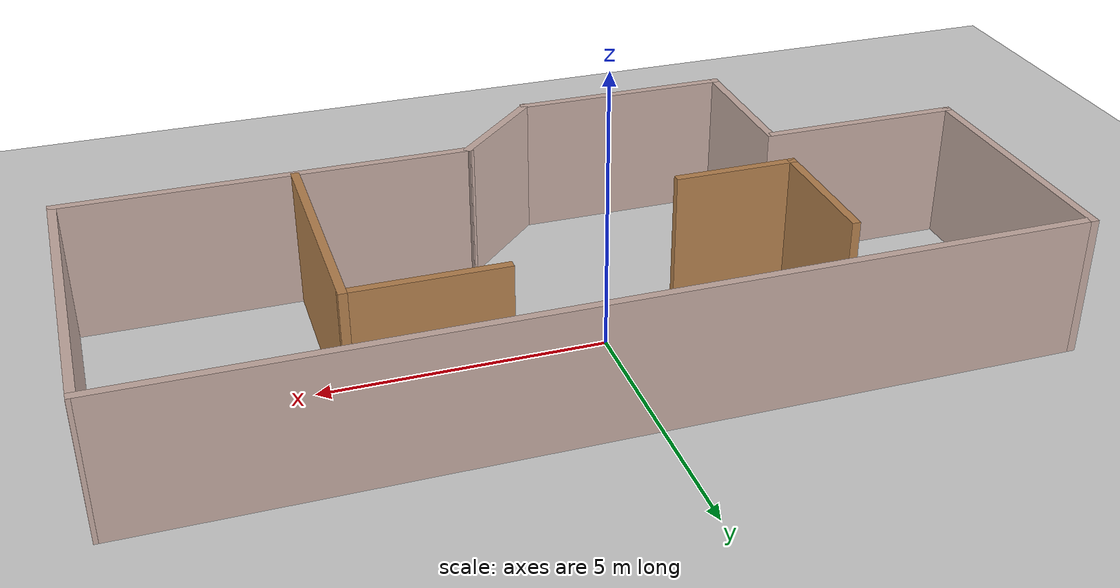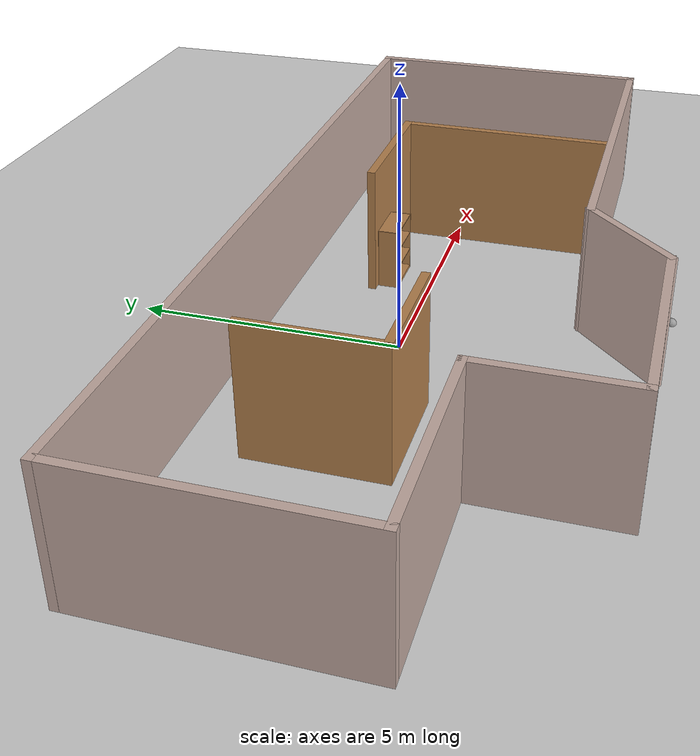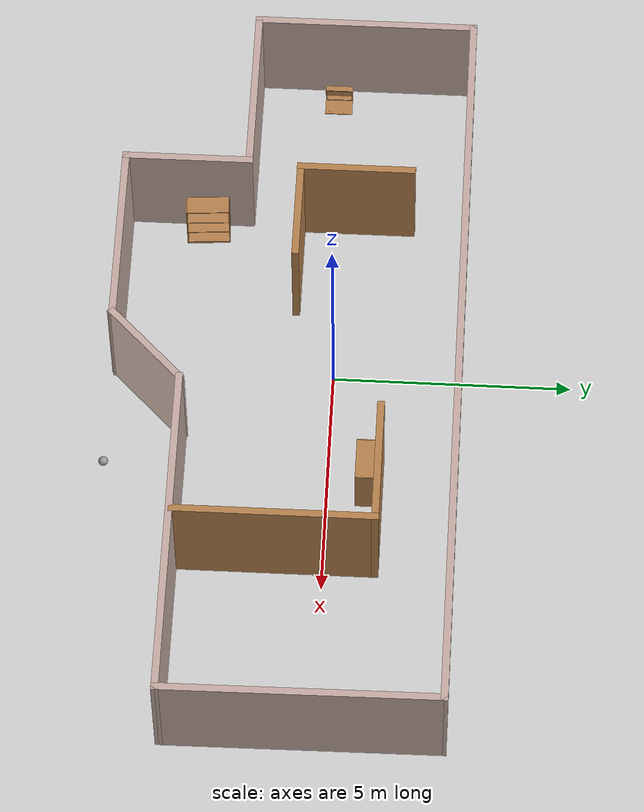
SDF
<sdf version="1.7">
 <world name="default">
  <light name="sun" type="directional">
   <pose>0 0 10 0 -0 0</pose>
   <diffuse>0.8 0.8 0.8 1</diffuse>
   <specular>0.2 0.2 0.2 1</specular>
   <attenuation>
    <range>1000</range>
    <constant>0.9</constant>
    <linear>0.01</linear>
    <quadratic>0.001</quadratic>
   </attenuation>
   <direction>-0.5 0.1 -0.9</direction>
   <spot><inner_angle>0</inner_angle><outer_angle>0</outer_angle><falloff>0</falloff></spot>
  </light>
  <model name="ground_plane">
   <static>1</static>
   <link name="link">
    <collision name="collision">
     <geometry><plane><normal>0 0 1</normal><size>100 100</size></plane></geometry>
     <surface>
      <contact><collide_bitmask>65535</collide_bitmask></contact>
      <friction><ode><mu>100</mu><mu2>50</mu2></ode></friction>
     </surface>
    </collision>
    <visual name="visual">
     <cast_shadows>0</cast_shadows>
     <geometry><plane><normal>0 0 1</normal><size>100 100</size></plane></geometry>
     <material>
      <script><uri>file://media/materials/scripts/gazebo.material</uri><name>Gazebo/Grey</name></script>
     </material>
    </visual>
   </link>
  </model>
  <gravity>0 0 -9.8</gravity>
  <magnetic_field>6e-06 2.3e-05 -4.2e-05</magnetic_field>
  <atmosphere type="adiabatic"/>
  <physics type="ode">
   <max_step_size>0.001</max_step_size>
   <real_time_factor>1</real_time_factor>
   <real_time_update_rate>1000</real_time_update_rate>
  </physics>
  <scene><ambient>0.4 0.4 0.4 1</ambient><background>0.7 0.7 0.7 1</background><shadows>1</shadows></scene>
  <spherical_coordinates>
   <surface_model>EARTH_WGS84</surface_model>
   <latitude_deg>0</latitude_deg>
   <longitude_deg>0</longitude_deg>
   <elevation>0</elevation>
   <heading_deg>0</heading_deg>
  </spherical_coordinates>
  <model name="house_for_my_robot">
   <pose>0.600575 -1.32557 0 0 -0 0</pose>
   <link name="Wall_0">
    <collision name="Wall_0_Collision">
     <geometry><box><size>16.15 0.15 2.5</size></box></geometry>
     <pose>0 0 1.25 0 -0 0</pose>
    </collision>
    <visual name="Wall_0_Visual">
     <pose>0 0 1.25 0 -0 0</pose>
     <geometry><box><size>16.15 0.15 2.5</size></box></geometry>
     <material>
      <script><uri>file://media/materials/scripts/gazebo.material</uri><name>Gazebo/Grey</name></script>
      <ambient>0.760784 0.662745 0.627451 1</ambient>
     </material>
     <meta><layer>0</layer></meta>
    </visual>
    <pose>-0.01769 3.96227 0 0 -0 0</pose>
   </link>
   <link name="Wall_10">
    <collision name="Wall_10_Collision">
     <geometry><box><size>2.5 0.15 2.5</size></box></geometry>
     <pose>0 0 1.25 0 -0 0</pose>
    </collision>
    <visual name="Wall_10_Visual">
     <pose>0 0 1.25 0 -0 0</pose>
     <geometry><box><size>2.5 0.15 2.5</size></box></geometry>
     <material>
      <script><uri>file://media/materials/scripts/gazebo.material</uri><name>Gazebo/Wood</name></script>
      <ambient>1 1 1 1</ambient>
     </material>
     <meta><layer>0</layer></meta>
    </visual>
    <pose>-4.32043 1.63013 0 0 -0 -1.5708</pose>
   </link>
   <link name="Wall_11">
    <collision name="Wall_11_Collision">
     <geometry><box><size>2.25 0.15 2.5</size></box></geometry>
     <pose>0 0 1.25 0 -0 0</pose>
    </collision>
    <visual name="Wall_11_Visual">
     <pose>0 0 1.25 0 -0 0</pose>
     <geometry><box><size>2.25 0.15 2.5</size></box></geometry>
     <material>
      <script><uri>file://media/materials/scripts/gazebo.material</uri><name>Gazebo/Wood</name></script>
      <ambient>1 1 1 1</ambient>
     </material>
     <meta><layer>0</layer></meta>
    </visual>
    <pose>-3.27043 0.455127 0 0 -0 0</pose>
   </link>
   <link name="Wall_13">
    <collision name="Wall_13_Collision">
     <geometry><box><size>4.25 0.15 2.5</size></box></geometry>
     <pose>0 0 1.25 0 -0 0</pose>
    </collision>
    <visual name="Wall_13_Visual">
     <pose>0 0 1.25 0 -0 0</pose>
     <geometry><box><size>4.25 0.15 2.5</size></box></geometry>
     <material>
      <script><uri>file://media/materials/scripts/gazebo.material</uri><name>Gazebo/Wood</name></script>
      <ambient>1 1 1 1</ambient>
     </material>
     <meta><layer>0</layer></meta>
    </visual>
    <pose>4.00011 0.358363 0 0 -0 1.5708</pose>
   </link>
   <link name="Wall_14">
    <collision name="Wall_14_Collision">
     <geometry><box><size>2.75 0.15 2.5</size></box></geometry>
     <pose>0 0 1.25 0 -0 0</pose>
    </collision>
    <visual name="Wall_14_Visual">
     <pose>0 0 1.25 0 -0 0</pose>
     <geometry><box><size>2.75 0.15 2.5</size></box></geometry>
     <material>
      <script><uri>file://media/materials/scripts/gazebo.material</uri><name>Gazebo/Wood</name></script>
      <ambient>1 1 1 1</ambient>
     </material>
     <meta><layer>0</layer></meta>
    </visual>
    <pose>2.70011 2.40836 0 0 -0 3.14159</pose>
   </link>
   <link name="Wall_2">
    <collision name="Wall_2_Collision">
     <geometry><box><size>4.75 0.15 2.5</size></box></geometry>
     <pose>0 0 1.25 0 -0 0</pose>
    </collision>
    <visual name="Wall_2_Visual">
     <pose>0 0 1.25 0 -0 0</pose>
     <geometry><box><size>4.75 0.15 2.5</size></box></geometry>
     <material>
      <script><uri>file://media/materials/scripts/gazebo.material</uri><name>Gazebo/Grey</name></script>
      <ambient>0.760784 0.662745 0.627451 1</ambient>
     </material>
     <meta><layer>0</layer></meta>
    </visual>
    <pose>-8.01769 1.66227 0 0 -0 -1.5708</pose>
   </link>
   <link name="Wall_3">
    <collision name="Wall_3_Collision">
     <geometry><box><size>3.75 0.15 2.5</size></box></geometry>
     <pose>0 0 1.25 0 -0 0</pose>
    </collision>
    <visual name="Wall_3_Visual">
     <pose>0 0 1.25 0 -0 0</pose>
     <geometry><box><size>3.75 0.15 2.5</size></box></geometry>
     <material>
      <script><uri>file://media/materials/scripts/gazebo.material</uri><name>Gazebo/Grey</name></script>
      <ambient>0.760784 0.662745 0.627451 1</ambient>
     </material>
     <meta><layer>0</layer></meta>
    </visual>
    <pose>-6.21769 -0.637728 0 0 -0 0</pose>
   </link>
   <link name="Wall_4">
    <collision name="Wall_4_Collision">
     <geometry><box><size>2.75 0.15 2.5</size></box></geometry>
     <pose>0 0 1.25 0 -0 0</pose>
    </collision>
    <visual name="Wall_4_Visual">
     <pose>0 0 1.25 0 -0 0</pose>
     <geometry><box><size>2.75 0.15 2.5</size></box></geometry>
     <material>
      <script><uri>file://media/materials/scripts/gazebo.material</uri><name>Gazebo/Grey</name></script>
      <ambient>0.760784 0.662745 0.627451 1</ambient>
     </material>
     <meta><layer>0</layer></meta>
    </visual>
    <pose>-4.41769 -1.93773 0 0 -0 -1.5708</pose>
   </link>
   <link name="Wall_5">
    <collision name="Wall_5_Collision">
     <geometry><box><size>4 0.15 2.5</size></box></geometry>
     <pose>0 0 1.25 0 -0 0</pose>
    </collision>
    <visual name="Wall_5_Visual">
     <pose>0 0 1.25 0 -0 0</pose>
     <geometry><box><size>4 0.15 2.5</size></box></geometry>
     <material>
      <script><uri>file://media/materials/scripts/gazebo.material</uri><name>Gazebo/Grey</name></script>
      <ambient>0.760784 0.662745 0.627451 1</ambient>
     </material>
     <meta><layer>0</layer></meta>
    </visual>
    <pose>-2.49269 -3.23773 0 0 -0 0</pose>
   </link>
   <link name="Wall_6">
    <collision name="Wall_6_Collision">
     <geometry><box><size>2.25 0.15 2.5</size></box></geometry>
     <pose>0 0 1.25 0 -0 0</pose>
    </collision>
    <visual name="Wall_6_Visual">
     <pose>0 0 1.25 0 -0 0</pose>
     <geometry><box><size>2.25 0.15 2.5</size></box></geometry>
     <material>
      <script><uri>file://media/materials/scripts/gazebo.material</uri><name>Gazebo/Grey</name></script>
      <ambient>0.760784 0.662745 0.627451 1</ambient>
     </material>
     <meta><layer>0</layer></meta>
    </visual>
    <pose>0.174772 -2.49527 0 0 -0 0.785398</pose>
   </link>
   <link name="Wall_7">
    <collision name="Wall_7_Collision">
     <geometry><box><size>7.25 0.15 2.5</size></box></geometry>
     <pose>0 0 1.25 0 -0 0</pose>
    </collision>
    <visual name="Wall_7_Visual">
     <pose>0 0 1.25 0 -0 0</pose>
     <geometry><box><size>7.25 0.15 2.5</size></box></geometry>
     <material>
      <script><uri>file://media/materials/scripts/gazebo.material</uri><name>Gazebo/Grey</name></script>
      <ambient>0.760784 0.662745 0.627451 1</ambient>
     </material>
     <meta><layer>0</layer></meta>
    </visual>
    <pose>4.46723 -1.7528 0 0 -0 0</pose>
   </link>
   <link name="Wall_8">
    <collision name="Wall_8_Collision">
     <geometry><box><size>5.86518 0.15 2.5</size></box></geometry>
     <pose>0 0 1.25 0 -0 0</pose>
    </collision>
    <visual name="Wall_8_Visual">
     <pose>0 0 1.25 0 -0 0</pose>
     <geometry><box><size>5.86518 0.15 2.5</size></box></geometry>
     <material>
      <script><uri>file://media/materials/scripts/gazebo.material</uri><name>Gazebo/Grey</name></script>
      <ambient>0.760784 0.662745 0.627451 1</ambient>
     </material>
     <meta><layer>0</layer></meta>
    </visual>
    <pose>7.99977 1.10473 0 0 -0 1.57691</pose>
   </link>
   <static>1</static>
  </model>
  <model name="my_ball">
   <link name="link_0">
    <inertial>
     <mass>1</mass>
     <inertia><ixx>0.1</ixx><ixy>0</ixy><ixz>0</ixz><iyy>0.1</iyy><iyz>0</iyz><izz>0.1</izz></inertia>
    </inertial>
    <visual name="visual">
     <geometry><sphere><radius>0.1</radius></sphere></geometry>
     <material>
      <lighting>1</lighting>
      <script><uri>file://media/materials/scripts/gazebo.material</uri><name>Gazebo/Grey</name></script>
      <shader type="pixel"><normal_map>__default__</normal_map></shader>
      <ambient>1 1 1 1</ambient>
      <diffuse>1 1 1 1</diffuse>
      <specular>1 1 1 1</specular>
      <emissive>1 1 1 1</emissive>
     </material>
    </visual>
    <collision name="collision">
     <geometry><sphere><radius>0.1</radius></sphere></geometry>
     <surface>
      <friction>
       <ode><mu>1</mu><mu2>1</mu2><fdir1>0 0 0</fdir1><slip1>0</slip1><slip2>0</slip2></ode>
       <torsional>
        <coefficient>1</coefficient>
        <patch_radius>0</patch_radius>
        <surface_radius>0</surface_radius>
        <use_patch_radius>1</use_patch_radius>
        <ode><slip>0</slip></ode>
       </torsional>
      </friction>
      <bounce><restitution_coefficient>0</restitution_coefficient><threshold>1e+06</threshold></bounce>
      <contact>
       <collide_without_contact>0</collide_without_contact>
       <collide_without_contact_bitmask>1</collide_without_contact_bitmask>
       <collide_bitmask>1</collide_bitmask>
       <ode>
        <soft_cfm>0</soft_cfm>
        <soft_erp>0.2</soft_erp>
        <kp>1e+13</kp>
        <kd>1</kd>
        <max_vel>0.01</max_vel>
        <min_depth>0</min_depth>
       </ode>
       <bullet>
        <split_impulse>1</split_impulse>
        <split_impulse_penetration_threshold>-0.01</split_impulse_penetration_threshold>
        <soft_cfm>0</soft_cfm>
        <soft_erp>0.2</soft_erp>
        <kp>1e+13</kp>
        <kd>1</kd>
       </bullet>
      </contact>
     </surface>
    </collision>
   </link>
   <static>0</static>
   <pose>2.20182 -4.70021 0 0 -0 0</pose>
  </model>
  <model name="bookshelf">
   <static>1</static>
   <link name="link">
    <inertial><mass>1</mass></inertial>
    <collision name="back">
     <pose>0 0.005 0.6 0 -0 0</pose>
     <geometry><box><size>0.9 0.01 1.2</size></box></geometry>
    </collision>
    <visual name="visual1">
     <pose>0 0.005 0.6 0 -0 0</pose>
     <geometry><box><size>0.9 0.01 1.2</size></box></geometry>
     <material>
      <script><uri>file://media/materials/scripts/gazebo.material</uri><name>Gazebo/Wood</name></script>
     </material>
    </visual>
    <collision name="left_side">
     <pose>0.45 -0.195 0.6 0 -0 0</pose>
     <geometry><box><size>0.02 0.4 1.2</size></box></geometry>
    </collision>
    <visual name="visual2">
     <pose>0.45 -0.195 0.6 0 -0 0</pose>
     <geometry><box><size>0.02 0.4 1.2</size></box></geometry>
     <material>
      <script><uri>file://media/materials/scripts/gazebo.material</uri><name>Gazebo/Wood</name></script>
     </material>
    </visual>
    <collision name="right_side">
     <pose>-0.45 -0.195 0.6 0 -0 0</pose>
     <geometry><box><size>0.02 0.4 1.2</size></box></geometry>
    </collision>
    <visual name="visual3">
     <pose>-0.45 -0.195 0.6 0 -0 0</pose>
     <geometry><box><size>0.02 0.4 1.2</size></box></geometry>
     <material>
      <script><uri>file://media/materials/scripts/gazebo.material</uri><name>Gazebo/Wood</name></script>
     </material>
    </visual>
    <collision name="bottom">
     <pose>0 -0.195 0.03 0 -0 0</pose>
     <geometry><box><size>0.88 0.4 0.06</size></box></geometry>
    </collision>
    <visual name="visual4">
     <pose>0 -0.195 0.03 0 -0 0</pose>
     <geometry><box><size>0.88 0.4 0.06</size></box></geometry>
     <material>
      <script><uri>file://media/materials/scripts/gazebo.material</uri><name>Gazebo/Wood</name></script>
     </material>
    </visual>
    <collision name="top">
     <pose>0 -0.195 1.19 0 -0 0</pose>
     <geometry><box><size>0.88 0.4 0.02</size></box></geometry>
    </collision>
    <visual name="visual5">
     <pose>0 -0.195 1.19 0 -0 0</pose>
     <geometry><box><size>0.88 0.4 0.02</size></box></geometry>
     <material>
      <script><uri>file://media/materials/scripts/gazebo.material</uri><name>Gazebo/Wood</name></script>
     </material>
    </visual>
    <collision name="low_shelf">
     <pose>0 -0.195 0.43 0 -0 0</pose>
     <geometry><box><size>0.88 0.4 0.02</size></box></geometry>
    </collision>
    <visual name="visual6">
     <pose>0 -0.195 0.43 0 -0 0</pose>
     <geometry><box><size>0.88 0.4 0.02</size></box></geometry>
     <material>
      <script><uri>file://media/materials/scripts/gazebo.material</uri><name>Gazebo/Wood</name></script>
     </material>
    </visual>
    <collision name="high_shelf">
     <pose>0 -0.195 0.8 0 -0 0</pose>
     <geometry><box><size>0.88 0.4 0.02</size></box></geometry>
    </collision>
    <visual name="visual7">
     <pose>0 -0.195 0.8 0 -0 0</pose>
     <geometry><box><size>0.88 0.4 0.02</size></box></geometry>
     <material>
      <script><uri>file://media/materials/scripts/gazebo.material</uri><name>Gazebo/Wood</name></script>
     </material>
    </visual>
   </link>
   <pose>2.55566 0.99068 0 0 -0 0</pose>
  </model>
  <model name="bookshelf_0">
   <static>1</static>
   <link name="link">
    <inertial><mass>1</mass></inertial>
    <collision name="back">
     <pose>0 0.005 0.6 0 -0 0</pose>
     <geometry><box><size>0.9 0.01 1.2</size></box></geometry>
    </collision>
    <visual name="visual1">
     <pose>0 0.005 0.6 0 -0 0</pose>
     <geometry><box><size>0.9 0.01 1.2</size></box></geometry>
     <material>
      <script><uri>file://media/materials/scripts/gazebo.material</uri><name>Gazebo/Wood</name></script>
     </material>
    </visual>
    <collision name="left_side">
     <pose>0.45 -0.195 0.6 0 -0 0</pose>
     <geometry><box><size>0.02 0.4 1.2</size></box></geometry>
    </collision>
    <visual name="visual2">
     <pose>0.45 -0.195 0.6 0 -0 0</pose>
     <geometry><box><size>0.02 0.4 1.2</size></box></geometry>
     <material>
      <script><uri>file://media/materials/scripts/gazebo.material</uri><name>Gazebo/Wood</name></script>
     </material>
    </visual>
    <collision name="right_side">
     <pose>-0.45 -0.195 0.6 0 -0 0</pose>
     <geometry><box><size>0.02 0.4 1.2</size></box></geometry>
    </collision>
    <visual name="visual3">
     <pose>-0.45 -0.195 0.6 0 -0 0</pose>
     <geometry><box><size>0.02 0.4 1.2</size></box></geometry>
     <material>
      <script><uri>file://media/materials/scripts/gazebo.material</uri><name>Gazebo/Wood</name></script>
     </material>
    </visual>
    <collision name="bottom">
     <pose>0 -0.195 0.03 0 -0 0</pose>
     <geometry><box><size>0.88 0.4 0.06</size></box></geometry>
    </collision>
    <visual name="visual4">
     <pose>0 -0.195 0.03 0 -0 0</pose>
     <geometry><box><size>0.88 0.4 0.06</size></box></geometry>
     <material>
      <script><uri>file://media/materials/scripts/gazebo.material</uri><name>Gazebo/Wood</name></script>
     </material>
    </visual>
    <collision name="top">
     <pose>0 -0.195 1.19 0 -0 0</pose>
     <geometry><box><size>0.88 0.4 0.02</size></box></geometry>
    </collision>
    <visual name="visual5">
     <pose>0 -0.195 1.19 0 -0 0</pose>
     <geometry><box><size>0.88 0.4 0.02</size></box></geometry>
     <material>
      <script><uri>file://media/materials/scripts/gazebo.material</uri><name>Gazebo/Wood</name></script>
     </material>
    </visual>
    <collision name="low_shelf">
     <pose>0 -0.195 0.43 0 -0 0</pose>
     <geometry><box><size>0.88 0.4 0.02</size></box></geometry>
    </collision>
    <visual name="visual6">
     <pose>0 -0.195 0.43 0 -0 0</pose>
     <geometry><box><size>0.88 0.4 0.02</size></box></geometry>
     <material>
      <script><uri>file://media/materials/scripts/gazebo.material</uri><name>Gazebo/Wood</name></script>
     </material>
    </visual>
    <collision name="high_shelf">
     <pose>0 -0.195 0.8 0 -0 0</pose>
     <geometry><box><size>0.88 0.4 0.02</size></box></geometry>
    </collision>
    <visual name="visual7">
     <pose>0 -0.195 0.8 0 -0 0</pose>
     <geometry><box><size>0.88 0.4 0.02</size></box></geometry>
     <material>
      <script><uri>file://media/materials/scripts/gazebo.material</uri><name>Gazebo/Wood</name></script>
     </material>
    </visual>
   </link>
   <pose>-3.66915 -2.86393 0 0 -0 1.63674</pose>
  </model>
  <model name="wooden_case">
   <link name="base">
    <pose>0 0 0.024 0 -0 0</pose>
    <inertial>
     <pose>-0.022184 0 0.171592 0 -0 0</pose>
     <mass>3.96264</mass>
     <inertia>
      <ixx>0.213536</ixx>
      <ixy>0</ixy>
      <ixz>0.000779377</ixz>
      <iyy>0.0708943</iyy>
      <iyz>0</iyz>
      <izz>0.154604</izz>
     </inertia>
    </inertial>
    <collision name="collision_back">
     <pose>-0.053975 0 0.1778 0 -0 0</pose>
     <geometry><box><size>0.01905 0.5461 0.3175</size></box></geometry>
     <surface>
      <contact>
       <poissons_ratio>0.347</poissons_ratio>
       <elastic_modulus>8.8e+09</elastic_modulus>
       <ode><kp>100000</kp><kd>100</kd><max_vel>100</max_vel><min_depth>0.001</min_depth></ode>
      </contact>
      <friction>
       <torsional>
        <coefficient>1</coefficient>
        <use_patch_radius>0</use_patch_radius>
        <surface_radius>0.01</surface_radius>
       </torsional>
      </friction>
     </surface>
    </collision>
    <visual name="visual_back">
     <pose>-0.053975 0 0.1778 0 -0 0</pose>
     <geometry><box><size>0.01905 0.5461 0.3175</size></box></geometry>
     <material>
      <script><uri>file://media/materials/scripts/gazebo.material</uri><name>Gazebo/Wood</name></script>
     </material>
    </visual>
    <collision name="collision_bottom">
     <pose>0 0 0.009525 0 -0 0</pose>
     <geometry><box><size>0.127 0.5842 0.01905</size></box></geometry>
     <surface>
      <contact>
       <poissons_ratio>0.347</poissons_ratio>
       <elastic_modulus>8.8e+09</elastic_modulus>
       <ode><kp>100000</kp><kd>100</kd><max_vel>100</max_vel><min_depth>0.001</min_depth></ode>
      </contact>
      <friction>
       <torsional>
        <coefficient>1</coefficient>
        <use_patch_radius>0</use_patch_radius>
        <surface_radius>0.01</surface_radius>
       </torsional>
      </friction>
     </surface>
    </collision>
    <visual name="visual_bottom">
     <pose>0 0 0.009525 0 -0 0</pose>
     <geometry><box><size>0.127 0.5842 0.01905</size></box></geometry>
     <material>
      <script><uri>file://media/materials/scripts/gazebo.material</uri><name>Gazebo/Wood</name></script>
     </material>
    </visual>
    <collision name="collision_top">
     <pose>0 0 0.346075 0 -0 0</pose>
     <geometry><box><size>0.127 0.5842 0.01905</size></box></geometry>
     <surface>
      <contact>
       <poissons_ratio>0.347</poissons_ratio>
       <elastic_modulus>8.8e+09</elastic_modulus>
       <ode><kp>100000</kp><kd>100</kd><max_vel>100</max_vel><min_depth>0.001</min_depth></ode>
      </contact>
      <friction>
       <torsional>
        <coefficient>1</coefficient>
        <use_patch_radius>0</use_patch_radius>
        <surface_radius>0.01</surface_radius>
       </torsional>
      </friction>
     </surface>
    </collision>
    <visual name="visual_top">
     <pose>0 0 0.346075 0 -0 0</pose>
     <geometry><box><size>0.127 0.5842 0.01905</size></box></geometry>
     <material>
      <script><uri>file://media/materials/scripts/gazebo.material</uri><name>Gazebo/Wood</name></script>
     </material>
    </visual>
    <collision name="collision_left">
     <pose>0 -0.282575 0.1778 0 -0 0</pose>
     <geometry><box><size>0.127 0.01905 0.3175</size></box></geometry>
     <surface>
      <contact>
       <poissons_ratio>0.347</poissons_ratio>
       <elastic_modulus>8.8e+09</elastic_modulus>
       <ode><kp>100000</kp><kd>100</kd><max_vel>100</max_vel><min_depth>0.001</min_depth></ode>
      </contact>
      <friction>
       <torsional>
        <coefficient>1</coefficient>
        <use_patch_radius>0</use_patch_radius>
        <surface_radius>0.01</surface_radius>
       </torsional>
      </friction>
     </surface>
    </collision>
    <visual name="visual_left">
     <pose>0 -0.282575 0.1778 0 -0 0</pose>
     <geometry><box><size>0.127 0.01905 0.3175</size></box></geometry>
     <material>
      <script><uri>file://media/materials/scripts/gazebo.material</uri><name>Gazebo/Wood</name></script>
     </material>
    </visual>
    <collision name="collision_right">
     <pose>0 0.282575 0.1778 0 -0 0</pose>
     <geometry><box><size>0.127 0.01905 0.3175</size></box></geometry>
     <surface>
      <contact>
       <poissons_ratio>0.347</poissons_ratio>
       <elastic_modulus>8.8e+09</elastic_modulus>
       <ode><kp>100000</kp><kd>100</kd><max_vel>100</max_vel><min_depth>0.001</min_depth></ode>
      </contact>
      <friction>
       <torsional>
        <coefficient>1</coefficient>
        <use_patch_radius>0</use_patch_radius>
        <surface_radius>0.01</surface_radius>
       </torsional>
      </friction>
     </surface>
    </collision>
    <visual name="visual_right">
     <pose>0 0.282575 0.1778 0 -0 0</pose>
     <geometry><box><size>0.127 0.01905 0.3175</size></box></geometry>
     <material>
      <script><uri>file://media/materials/scripts/gazebo.material</uri><name>Gazebo/Wood</name></script>
     </material>
    </visual>
    <collision name="collision_block_left">
     <pose>0.0095 -0.2151 -0.012 0 -0 0</pose>
     <geometry><box><size>0.108 0.05 0.024</size></box></geometry>
     <surface>
      <contact>
       <poissons_ratio>0.347</poissons_ratio>
       <elastic_modulus>8.8e+09</elastic_modulus>
       <ode><kp>100000</kp><kd>100</kd><max_vel>100</max_vel><min_depth>0.001</min_depth></ode>
      </contact>
      <friction>
       <torsional>
        <coefficient>1</coefficient>
        <use_patch_radius>0</use_patch_radius>
        <surface_radius>0.01</surface_radius>
       </torsional>
      </friction>
     </surface>
    </collision>
    <visual name="visual_block_left">
     <pose>0.0095 -0.2151 -0.012 0 -0 0</pose>
     <geometry><box><size>0.108 0.05 0.024</size></box></geometry>
     <material>
      <script><uri>file://media/materials/scripts/gazebo.material</uri><name>Gazebo/Wood</name></script>
     </material>
    </visual>
    <collision name="collision_block_right">
     <pose>0.0095 0.2151 -0.012 0 -0 0</pose>
     <geometry><box><size>0.108 0.05 0.024</size></box></geometry>
     <surface>
      <contact>
       <poissons_ratio>0.347</poissons_ratio>
       <elastic_modulus>8.8e+09</elastic_modulus>
       <ode><kp>100000</kp><kd>100</kd><max_vel>100</max_vel><min_depth>0.001</min_depth></ode>
      </contact>
      <friction>
       <torsional>
        <coefficient>1</coefficient>
        <use_patch_radius>0</use_patch_radius>
        <surface_radius>0.01</surface_radius>
       </torsional>
      </friction>
     </surface>
    </collision>
    <visual name="visual_block_right">
     <pose>0.0095 0.2151 -0.012 0 -0 0</pose>
     <geometry><box><size>0.108 0.05 0.024</size></box></geometry>
     <material>
      <script><uri>file://media/materials/scripts/gazebo.material</uri><name>Gazebo/Wood</name></script>
     </material>
    </visual>
   </link>
   <link name="lid">
    <pose>0.243775 0 0.009525 0 -0 0</pose>
    <inertial>
     <mass>1.97874</mass>
     <inertia>
      <ixx>0.0563367</ixx>
      <ixy>0</ixy>
      <ixz>0</ixz>
      <iyy>0.020911</iyy>
      <iyz>0</iyz>
      <izz>0.0771281</izz>
     </inertia>
    </inertial>
    <collision name="collision">
     <geometry><box><size>0.3556 0.5842 0.01905</size></box></geometry>
     <surface>
      <contact>
       <poissons_ratio>0.347</poissons_ratio>
       <elastic_modulus>8.8e+09</elastic_modulus>
       <ode><kp>100000</kp><kd>100</kd><max_vel>100</max_vel><min_depth>0.001</min_depth></ode>
      </contact>
      <friction>
       <torsional>
        <coefficient>1</coefficient>
        <use_patch_radius>0</use_patch_radius>
        <surface_radius>0.01</surface_radius>
       </torsional>
      </friction>
     </surface>
    </collision>
    <visual name="visual">
     <geometry><box><size>0.3556 0.5842 0.01905</size></box></geometry>
     <material>
      <script><uri>file://media/materials/scripts/gazebo.material</uri><name>Gazebo/Wood</name></script>
     </material>
    </visual>
    <visual name="tee_nut_1">
     <pose>0.122 -0.216 0 0 -0 0</pose>
     <geometry><cylinder><radius>0.00635</radius><length>0.0192405</length></cylinder></geometry>
     <material>
      <script><uri>file://media/materials/scripts/gazebo.material</uri><name>Gazebo/Grey</name></script>
     </material>
    </visual>
    <visual name="tee_nut_2">
     <pose>0.122 -0.088 0 0 -0 0</pose>
     <geometry><cylinder><radius>0.00635</radius><length>0.0192405</length></cylinder></geometry>
     <material>
      <script><uri>file://media/materials/scripts/gazebo.material</uri><name>Gazebo/Grey</name></script>
     </material>
    </visual>
    <visual name="tee_nut_3">
     <pose>0.122 0.088 0 0 -0 0</pose>
     <geometry><cylinder><radius>0.00635</radius><length>0.0192405</length></cylinder></geometry>
     <material>
      <script><uri>file://media/materials/scripts/gazebo.material</uri><name>Gazebo/Grey</name></script>
     </material>
    </visual>
    <visual name="tee_nut_4">
     <pose>0.122 0.216 0 0 -0 0</pose>
     <geometry><cylinder><radius>0.00635</radius><length>0.0192405</length></cylinder></geometry>
     <material>
      <script><uri>file://media/materials/scripts/gazebo.material</uri><name>Gazebo/Grey</name></script>
     </material>
    </visual>
   </link>
   <joint name="lid_hinge" type="revolute">
    <pose>-0.1778 0 0.01905 0 -0 0</pose>
    <parent>base</parent>
    <child>lid</child>
    <axis>
     <xyz>0 1 0</xyz>
     <limit><upper>0.523599</upper><lower>-1.5708</lower></limit>
     <dynamics><spring_reference>0</spring_reference><spring_stiffness>0</spring_stiffness></dynamics>
    </axis>
   </joint>
   <pose>-7.13929 -0.233502 0 0 -0 0</pose>
  </model>
 </world>
</sdf>
